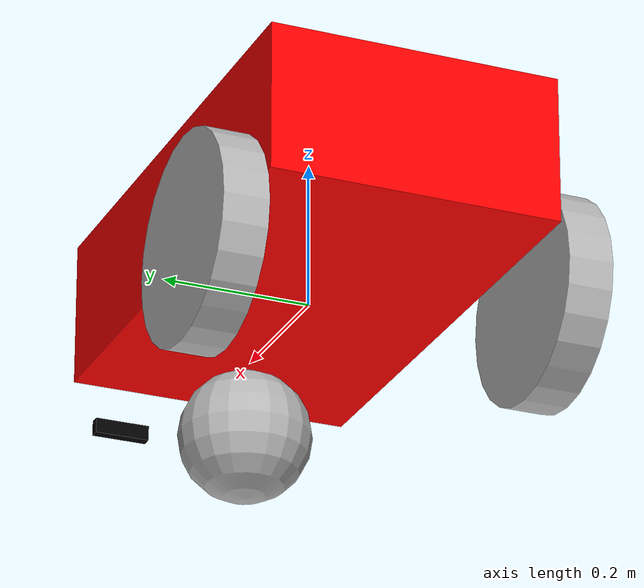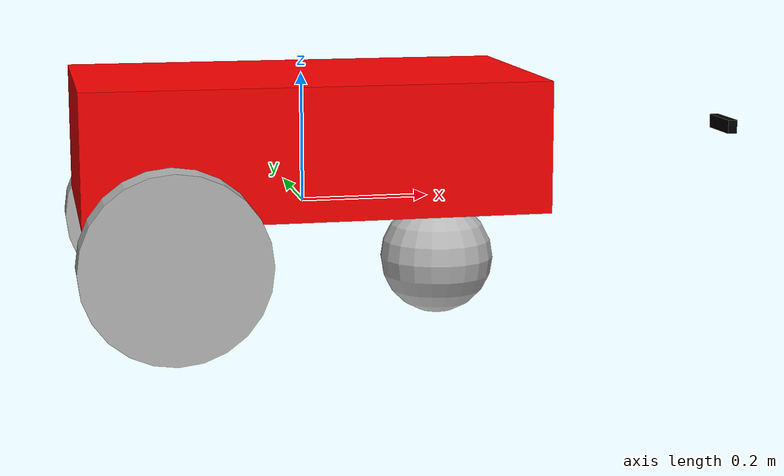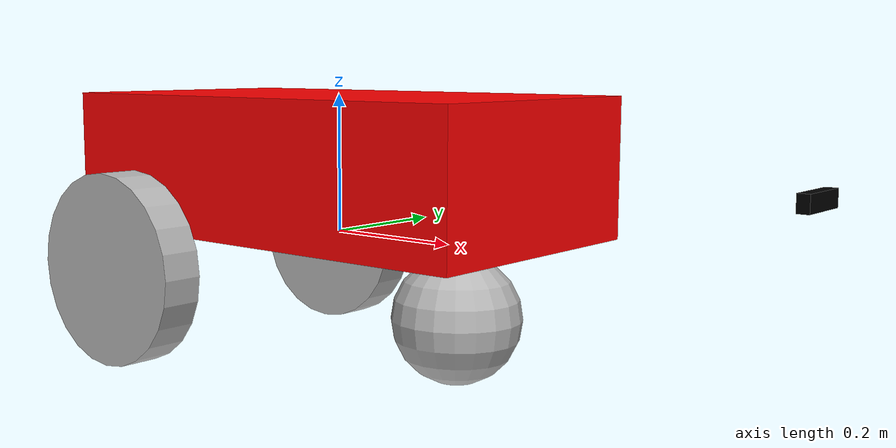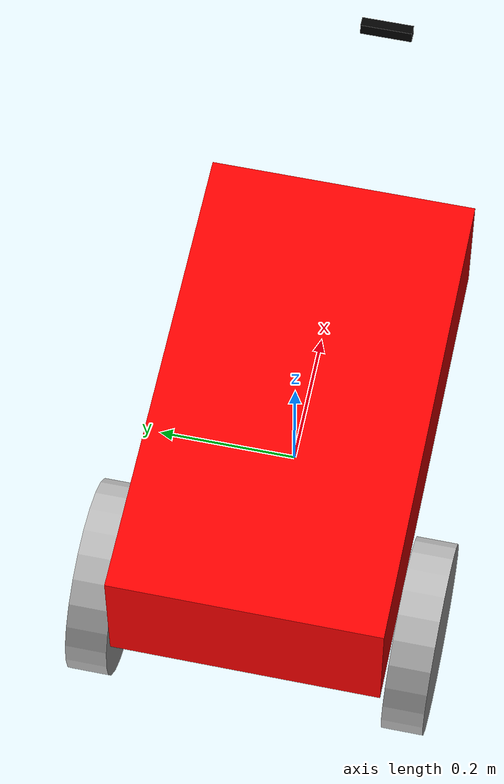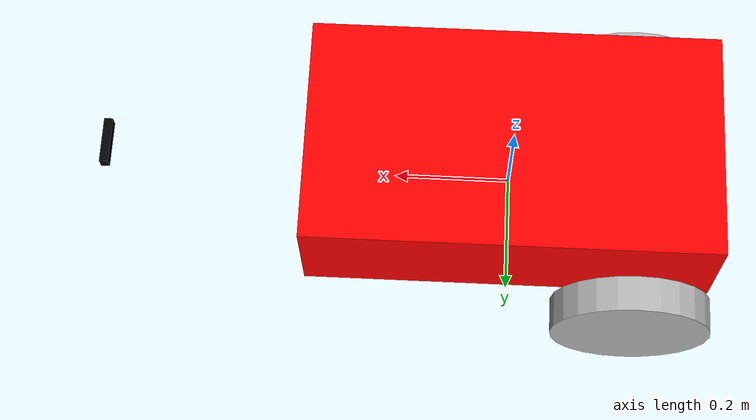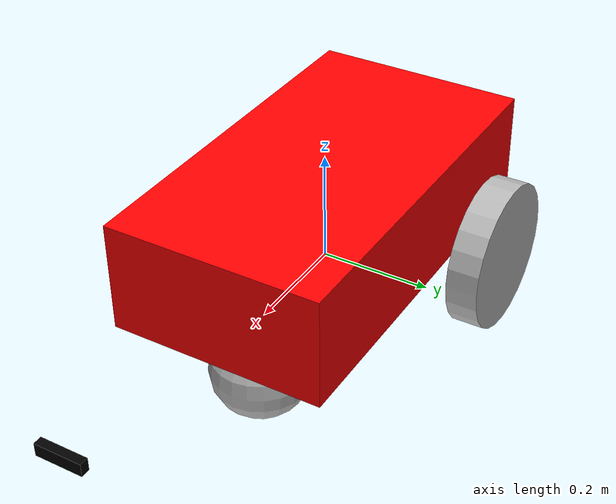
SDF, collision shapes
<?xml version="1.0" ?>
<sdf version="1.5">
  <model name="basic_mobile_bot">
  <static>false</static>

  <!-- ****************** ROBOT BASE FOOTPRINT ***************************  -->
  <pose>0.0 0.0 0.0 0.0 0.0 0.0</pose>
  <link name="base_footprint"/>

  <!-- ********************** ROBOT BASE *********************************  -->
  <link name="base_link">

    <collision name="base_collision">
      <pose>0 0 0.1 0 0 0</pose>
      <geometry>
        <box>
          <size>0.70 0.39 0.20</size>
        </box>
      </geometry>
    </collision>

    <visual name="base_visual">
      <pose>0 0 -0.05 1.5707963267949 0 3.141592654</pose>
      <geometry>
        <mesh>
          <uri>model://basic_mobile_bot_description/meshes/robot_base.stl</uri>
          <scale>1.0 1.0 1.0</scale>
        </mesh>
      </geometry>
      <material>
        <ambient>1.0 0.0 0.0 1.0</ambient>
        <diffuse>1.0 0.0 0.0 1.0</diffuse>
        <specular>0.0 0.0 0.0 1.0</specular>
        <emissive>0.0 0.0 0.0 1.0</emissive>
      </material>
    </visual>
  </link>

  <!-- *********************** IMU SENSOR SETUP **************************  -->
  <link name="imu_link">
    <gravity>true</gravity>
    <sensor name="bmb_imu" type="imu">
      <always_on>true</always_on>
      <update_rate>100</update_rate>
      <visualize>true</visualize>
      <imu>
        <orientation>
          <x>
            <noise type="gaussian">
              <mean>0.0</mean>
              <stddev>2e-3</stddev>
            </noise>
          </x>
          <y>
            <noise type="gaussian">
              <mean>0.0</mean>
              <stddev>2e-3</stddev>
            </noise>
          </y>
          <z>
            <noise type="gaussian">
              <mean>0.0</mean>
              <stddev>2e-3</stddev>
            </noise>
          </z>
        </orientation>
        <angular_velocity>
          <x>
            <noise type="gaussian">
              <mean>0.0</mean>
              <stddev>2e-4</stddev>
            </noise>
          </x>
          <y>
            <noise type="gaussian">
              <mean>0.0</mean>
              <stddev>2e-4</stddev>
            </noise>
          </y>
          <z>
            <noise type="gaussian">
              <mean>0.0</mean>
              <stddev>2e-4</stddev>
            </noise>
          </z>
        </angular_velocity>
        <linear_acceleration>
          <x>
            <noise type="gaussian">
              <mean>0.0</mean>
              <stddev>1.7e-2</stddev>
            </noise>
          </x>
          <y>
            <noise type="gaussian">
              <mean>0.0</mean>
              <stddev>1.7e-2</stddev>
            </noise>
          </y>
          <z>
            <noise type="gaussian">
              <mean>0.0</mean>
              <stddev>1.7e-2</stddev>
            </noise>
          </z>
        </linear_acceleration>
      </imu>
      <plugin name="basic_mobile_bot_imu" filename="libgazebo_ros_imu_sensor.so">
        <initial_orientation_as_reference>false</initial_orientation_as_reference>
        <frame_name>imu_link</frame_name>
        <ros>
          <namespace>/imu</namespace>
          <remapping>~/out:=data</remapping>
        </ros>
      </plugin>
    </sensor>
  </link>

  <!-- *********************** GPS SETUP *********************************  -->
  <link name="gps_link">
    <sensor name="bmb_gps" type="gps">
      <always_on>true</always_on>
      <update_rate>10.0</update_rate>
      <gps>
        <position_sensing>
          <horizontal>
            <noise type="gaussian">
              <mean>0.0</mean>
              <stddev>1e-2</stddev>
            </noise>
          </horizontal>
          <vertical>
            <noise type="gaussian">
              <mean>0.0</mean>
              <stddev>1</stddev>
            </noise>
          </vertical>
        </position_sensing>
      </gps>
      <plugin name="basic_mobile_bot_gps" filename="libgazebo_ros_gps_sensor.so">
        <ros>
          <remapping>~/out:=gps/fix</remapping>
        </ros>
      </plugin>
    </sensor>
  </link>

  <!-- *********************** DEPTH CAMERA ******************************  -->
  <!-- The depth camera (e.g. Intel Realsense camera). -->

  <link name="camera_link">
    <pose>0.35 0 0.05 0 0 0</pose>
    <inertial>
      <pose>0.35 0 0.05 0 0 0</pose>
      <inertia>
        <ixx>0.001</ixx>
        <ixy>0.000</ixy>
        <ixz>0.000</ixz>
        <iyy>0.001</iyy>
        <iyz>0.000</iyz>
        <izz>0.001</izz>
      </inertia>
      <mass>0.035</mass>
    </inertial>

    <visual name="camera_visual">
      <pose>0.35 0 0.05 0 0 0</pose>
      <geometry>
        <box>
          <size>0.015 0.08 0.022</size>
        </box>
      </geometry>
      <material>
        <ambient>0 0 0 1.0</ambient>
        <diffuse>0 0 0 1.0</diffuse>
        <specular>0.0 0.0 0.0 1.0</specular>
        <emissive>0.0 0.0 0.0 1.0</emissive>
      </material>
    </visual>

    <collision name="camera_collision">
      <pose>0.35 0 0.05 0 0 0</pose>
      <geometry>
        <box>
          <size>0.015 0.08 0.022</size>
        </box>
      </geometry>
    </collision>

    <sensor name="depth_camera" type="depth">
      <always_on>true</always_on>
      <visualize>true</visualize>
      <update_rate>30</update_rate>
      <camera name="camera">
        <horizontal_fov>1.02974</horizontal_fov>
        <image>
          <width>640</width>
          <height>480</height>
          <format>R8G8B8</format>
        </image>
        <clip>
          <near>0.05</near>
          <far>10</far>
        </clip>
        <noise>
          <type>gaussian</type>
          <!-- Noise is sampled independently per pixel on each frame.
              That pixel's noise value is added to each of its color
                channels, which at that point lie in the range [0,1]. -->
          <mean>0.0</mean>
          <stddev>0.007</stddev>
        </noise>
      </camera>
      <plugin name="depth_camera_controller" filename="libgazebo_ros_camera.so">
        <ros>
          <qos>
            <topic name="/depth_camera/depth/image_raw">
              <publisher>
                <reliability>best_effort</reliability>
              </publisher>
              <subscription>
                <reliability>best_effort</reliability>
              </subscription>
            </topic>
          </qos>
        </ros>
        <baseline>0.2</baseline>
        <alwaysOn>true</alwaysOn>
        <updateRate>0.0</updateRate>
        <frame_name>camera_depth_frame</frame_name>
        <pointCloudCutoff>0.5</pointCloudCutoff>
        <pointCloudCutoffMax>3.0</pointCloudCutoffMax>
        <distortionK1>0</distortionK1>
        <distortionK2>0</distortionK2>
        <distortionK3>0</distortionK3>
        <distortionT1>0</distortionT1>
        <distortionT2>0</distortionT2>
        <CxPrime>0</CxPrime>
        <Cx>0</Cx>
        <Cy>0</Cy>
        <focalLength>0</focalLength>
        <hackBaseline>0</hackBaseline>
      </plugin>
    </sensor>
  </link>

  <!-- *********************** DRIVE WHEELS ******************************  -->
  <link name="drivewhl_l_link">
    <pose>-0.221 0.23 -0.05 0 1.570796 1.570796</pose>

    <collision name="drivewhl_l_collision">
      <geometry>
        <cylinder>
          <radius>0.14</radius>
          <length>0.06</length>
        </cylinder>
      </geometry>
    </collision>

    <visual name="drivewhl_l_visual">
      <geometry>
        <cylinder>
          <radius>0.14</radius>
          <length>0.06</length>
        </cylinder>
      </geometry>
    </visual>
  </link>

  <link name="drivewhl_r_link">
    <pose>-0.221 -0.23 -0.05 0 1.570796 1.570796</pose>

    <collision name="drivewhl_r_collision">
      <geometry>
        <cylinder>
          <radius>0.14</radius>
          <length>0.06</length>
        </cylinder>
      </geometry>
    </collision>

    <visual name="drivewhl_r_visual">
      <geometry>
        <cylinder>
          <radius>0.14</radius>
          <length>0.06</length>
        </cylinder>
      </geometry>
    </visual>
  </link>

  <!-- *********************** CASTER WHEEL ******************************  -->
  <link name='front_caster'>
    <pose>0.217 0 -0.1 0 0 0</pose>
    <inertial>
      <inertia>
        <ixx>0.001</ixx>
        <ixy>0.000</ixy>
        <ixz>0.000</ixz>
        <iyy>0.001</iyy>
        <iyz>0.000</iyz>
        <izz>0.001</izz>
      </inertia>
      <mass>70.0</mass>
    </inertial>
    <collision name='collision'>
      <geometry>
        <sphere>
          <radius>0.09</radius>
        </sphere>
      </geometry>
      <surface>
        <friction>
          <ode>
            <mu>0.01</mu>
            <mu2>0.01</mu2>
            <slip1>1.0</slip1>
            <slip2>1.0</slip2>
          </ode>
        </friction>
      </surface>
    </collision>
    <visual name="front_caster_visual">
      <geometry>
        <sphere>
          <radius>0.09</radius>
        </sphere>
      </geometry>
    </visual>
  </link>

  <!-- ************************ JOINTS ***********************************  -->
  <!-- Pose of the joint is the same as the child link frame -->
  <!-- Axis is the axis of rotation relative to the child link frame -->

  <joint name="base_joint" type="fixed">
    <parent>base_footprint</parent>
    <child>base_link</child>
    <pose>0 0 0 0 0 0</pose>
  </joint>

  <joint name="drivewhl_l_joint" type="revolute">
    <parent>base_link</parent>
    <child>drivewhl_l_link</child>
    <pose>0 0 0 0 0 0</pose>
    <axis>
      <xyz>0 0 1</xyz>
    </axis>
  </joint>

  <joint name="drivewhl_r_joint" type="revolute">
    <parent>base_link</parent>
    <child>drivewhl_r_link</child>
    <pose>0 0 0 0 0 0</pose>
    <axis>
      <xyz>0 0 1</xyz>
    </axis>
  </joint>

  <joint name='caster_joint' type='fixed'>
    <parent>base_link</parent>
    <child>front_caster</child>
    <pose>0 0 0 0 0 0</pose>
  </joint>

  <joint name="imu_joint" type="fixed">
    <parent>base_link</parent>
    <child>imu_link</child>
    <pose>0 0 0 0 0 0</pose>
  </joint>

  <joint name="gps_joint" type="fixed">
    <parent>base_link</parent>
    <child>gps_link</child>
    <pose>0 0 0 0 0 0</pose>
  </joint>

  <joint name="camera_joint" type="fixed">
    <parent>base_link</parent>
    <child>camera_link</child>
    <pose>0 0 0 0 0 0</pose>
  </joint>
 <!-- *********************** WHEEL ODOMETRY ***************************    -->
  <plugin name="basic_mobile_bot_diff_drive" filename="libgazebo_ros_diff_drive.so">

    <update_rate>30</update_rate>

    <!-- wheels -->
    <left_joint>drivewhl_l_joint</left_joint>
    <right_joint>drivewhl_r_joint</right_joint>

    <!-- kinematics -->
    <wheel_separation>0.52</wheel_separation>
    <wheel_diameter>0.28</wheel_diameter>

    <!-- limits -->
    <max_wheel_torque>20</max_wheel_torque>
    <max_wheel_acceleration>1.0</max_wheel_acceleration>

    <!-- Receive velocity commands on this ROS topic -->
    <command_topic>cmd_vel</command_topic>

    <!-- output -->
    <!-- When false, publish no wheel odometry data to a ROS topic -->
    <publish_odom>true</publish_odom>

    <!-- When true, publish coordinate transform from odom to base_footprint -->
    <!-- I usually use the robot_localization package to publish this transform -->
    <publish_odom_tf>false</publish_odom_tf>

    <!-- When true, publish coordinate transform from base_link to the wheels -->
    <!-- The robot_state_publisher package is often used to publish this transform -->
    <publish_wheel_tf>false</publish_wheel_tf>

    <odometry_topic>odom</odometry_topic>
    <odometry_frame>odom</odometry_frame>
    <robot_base_frame>base_footprint</robot_base_frame>

    <!-- Odometry source, 0 for ENCODER, 1 for WORLD, defaults to WORLD -->
    <odometry_source>1</odometry_source>

    <!-- Change the ROS topic we will publish the odometry data to -->
    <ros>
      <remapping>odom:=wheel/odometry</remapping>
    </ros>

  </plugin>

 <!-- *********************** JOINT STATE PUBLISHER *********************   -->

  <plugin name="basic_mobile_bot_joint_state" filename="libgazebo_ros_joint_state_publisher.so">
    <ros>
      <remapping>~/out:=joint_states</remapping>
    </ros>
    <update_rate>30</update_rate>
    <joint_name>drivewhl_l_joint</joint_name>
    <joint_name>drivewhl_r_joint</joint_name>
  </plugin>

  </model>
</sdf>
